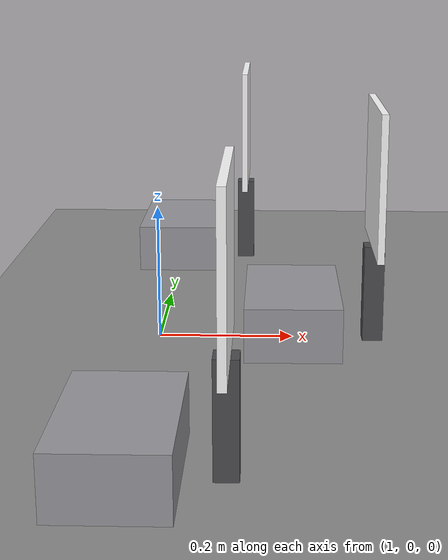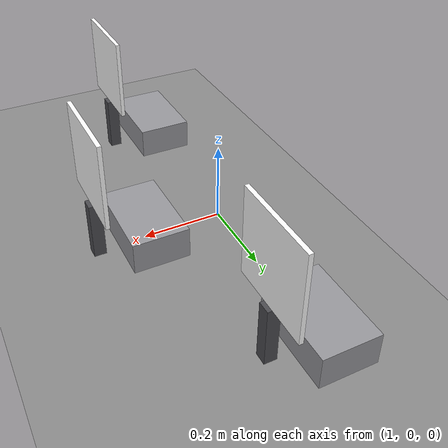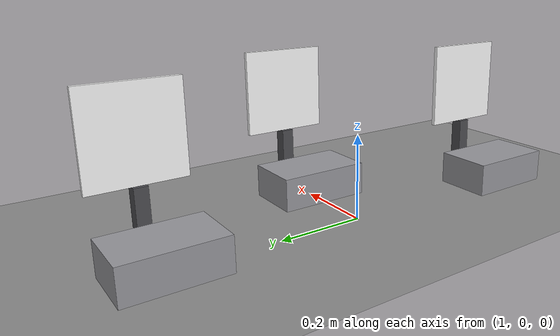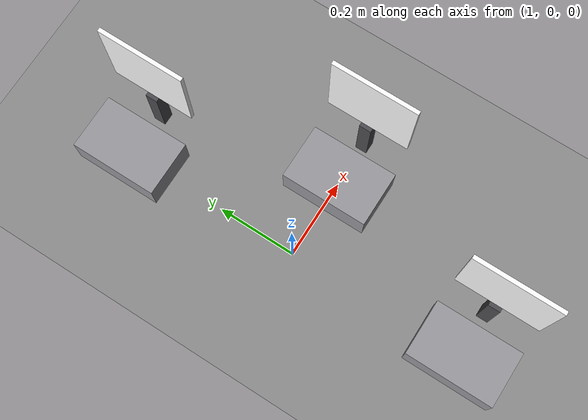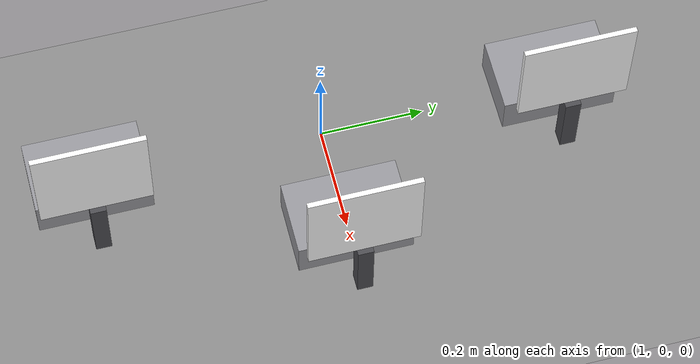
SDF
<?xml version="1.0"?>
<sdf version="1.9">
  <world name="apriltag_challenge">
    <physics name="1ms" type="ignored">
      <max_step_size>0.001</max_step_size>
      <real_time_factor>1.0</real_time_factor>
    </physics>
    <plugin filename="gz-sim-physics-system" name="gz::sim::systems::Physics"/>
    <plugin filename="gz-sim-user-commands-system" name="gz::sim::systems::UserCommands"/>
    <plugin filename="gz-sim-scene-broadcaster-system" name="gz::sim::systems::SceneBroadcaster"/>
    <plugin filename="gz-sim-sensors-system" name="gz::sim::systems::Sensors">
      <render_engine>ogre2</render_engine>
    </plugin>
    <plugin filename="gz-sim-imu-system" name="gz::sim::systems::Imu"/>

    <scene>
      <ambient>0.6 0.6 0.6 1</ambient>
      <background>0.8 0.8 0.8 1</background>
      <grid>false</grid>
    </scene>

    <light type="directional" name="sun">
      <cast_shadows>true</cast_shadows>
      <pose>0 0 10 0 0 0</pose>
      <diffuse>0.9 0.9 0.9 1</diffuse>
      <specular>0.2 0.2 0.2 1</specular>
      <direction>-0.5 0.1 -0.9</direction>
    </light>

    <model name="ground_plane">
      <static>true</static>
      <link name="link">
        <collision name="c"><geometry><plane><normal>0 0 1</normal><size>6 6</size></plane></geometry></collision>
        <visual name="v"><geometry><plane><normal>0 0 1</normal><size>6 6</size></plane></geometry>
          <material><ambient>0.55 0.55 0.55 1</ambient><diffuse>0.55 0.55 0.55 1</diffuse></material></visual>
      </link>
    </model>
    <model name="tag_station_0">
    <pose>1.0 0.45 0 0 0 3.14159</pose>
    <static>true</static>
    <link name="link">
      <collision name="pedestal_c">
        <pose>0 0 0.040000 0 0 0</pose>
        <geometry><box><size>0.140000 0.220000 0.080000</size></box></geometry>
      </collision>
      <visual name="pedestal_v">
        <pose>0 0 0.040000 0 0 0</pose>
        <geometry><box><size>0.140000 0.220000 0.080000</size></box></geometry>
        <material>
          <ambient>0.6 0.6 0.62 1</ambient>
          <diffuse>0.6 0.6 0.62 1</diffuse>
        </material>
      </visual>
      <collision name="post_c">
        <pose>-0.120000 0 0.072500 0 0 0</pose>
        <geometry><box><size>0.030000 0.030000 0.145000</size></box></geometry>
      </collision>
      <visual name="post_v">
        <pose>-0.120000 0 0.072500 0 0 0</pose>
        <geometry><box><size>0.030000 0.030000 0.145000</size></box></geometry>
        <material>
          <ambient>0.3 0.3 0.32 1</ambient>
          <diffuse>0.3 0.3 0.32 1</diffuse>
        </material>
      </visual>
      <collision name="board_c">
        <pose>-0.120000 0 0.250000 0 0 0</pose>
        <geometry><box><size>0.010000 0.210000 0.210000</size></box></geometry>
      </collision>
      <visual name="board_v">
        <pose>-0.120000 0 0.250000 0 0 0</pose>
        <geometry><box><size>0.010000 0.210000 0.210000</size></box></geometry>
        <material>
          <ambient>1 1 1 1</ambient>
          <diffuse>1 1 1 1</diffuse>
          <pbr><metal>
            <albedo_map>textures/tag_0.png</albedo_map>
            <roughness>0.9</roughness>
            <metalness>0</metalness>
          </metal></pbr>
        </material>
      </visual>
    </link>
  </model>
    <model name="tag_station_1">
    <pose>1.2 0.0 0 0 0 3.14159</pose>
    <static>true</static>
    <link name="link">
      <collision name="pedestal_c">
        <pose>0 0 0.040000 0 0 0</pose>
        <geometry><box><size>0.140000 0.220000 0.080000</size></box></geometry>
      </collision>
      <visual name="pedestal_v">
        <pose>0 0 0.040000 0 0 0</pose>
        <geometry><box><size>0.140000 0.220000 0.080000</size></box></geometry>
        <material>
          <ambient>0.6 0.6 0.62 1</ambient>
          <diffuse>0.6 0.6 0.62 1</diffuse>
        </material>
      </visual>
      <collision name="post_c">
        <pose>-0.120000 0 0.072500 0 0 0</pose>
        <geometry><box><size>0.030000 0.030000 0.145000</size></box></geometry>
      </collision>
      <visual name="post_v">
        <pose>-0.120000 0 0.072500 0 0 0</pose>
        <geometry><box><size>0.030000 0.030000 0.145000</size></box></geometry>
        <material>
          <ambient>0.3 0.3 0.32 1</ambient>
          <diffuse>0.3 0.3 0.32 1</diffuse>
        </material>
      </visual>
      <collision name="board_c">
        <pose>-0.120000 0 0.250000 0 0 0</pose>
        <geometry><box><size>0.010000 0.210000 0.210000</size></box></geometry>
      </collision>
      <visual name="board_v">
        <pose>-0.120000 0 0.250000 0 0 0</pose>
        <geometry><box><size>0.010000 0.210000 0.210000</size></box></geometry>
        <material>
          <ambient>1 1 1 1</ambient>
          <diffuse>1 1 1 1</diffuse>
          <pbr><metal>
            <albedo_map>textures/tag_1.png</albedo_map>
            <roughness>0.9</roughness>
            <metalness>0</metalness>
          </metal></pbr>
        </material>
      </visual>
    </link>
  </model>
    <model name="tag_station_2">
    <pose>1.0 -0.45 0 0 0 3.14159</pose>
    <static>true</static>
    <link name="link">
      <collision name="pedestal_c">
        <pose>0 0 0.040000 0 0 0</pose>
        <geometry><box><size>0.140000 0.220000 0.080000</size></box></geometry>
      </collision>
      <visual name="pedestal_v">
        <pose>0 0 0.040000 0 0 0</pose>
        <geometry><box><size>0.140000 0.220000 0.080000</size></box></geometry>
        <material>
          <ambient>0.6 0.6 0.62 1</ambient>
          <diffuse>0.6 0.6 0.62 1</diffuse>
        </material>
      </visual>
      <collision name="post_c">
        <pose>-0.120000 0 0.072500 0 0 0</pose>
        <geometry><box><size>0.030000 0.030000 0.145000</size></box></geometry>
      </collision>
      <visual name="post_v">
        <pose>-0.120000 0 0.072500 0 0 0</pose>
        <geometry><box><size>0.030000 0.030000 0.145000</size></box></geometry>
        <material>
          <ambient>0.3 0.3 0.32 1</ambient>
          <diffuse>0.3 0.3 0.32 1</diffuse>
        </material>
      </visual>
      <collision name="board_c">
        <pose>-0.120000 0 0.250000 0 0 0</pose>
        <geometry><box><size>0.010000 0.210000 0.210000</size></box></geometry>
      </collision>
      <visual name="board_v">
        <pose>-0.120000 0 0.250000 0 0 0</pose>
        <geometry><box><size>0.010000 0.210000 0.210000</size></box></geometry>
        <material>
          <ambient>1 1 1 1</ambient>
          <diffuse>1 1 1 1</diffuse>
          <pbr><metal>
            <albedo_map>textures/tag_2.png</albedo_map>
            <roughness>0.9</roughness>
            <metalness>0</metalness>
          </metal></pbr>
        </material>
      </visual>
    </link>
  </model>
  </world>
</sdf>
